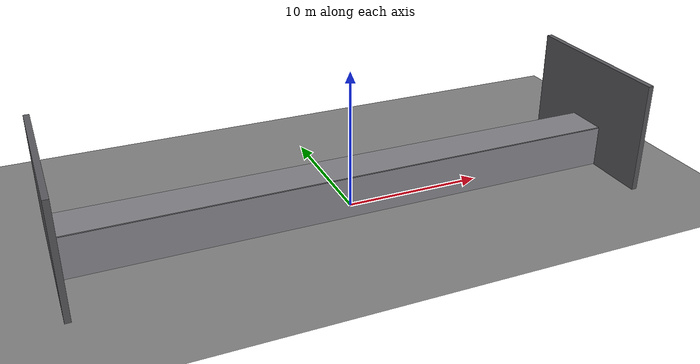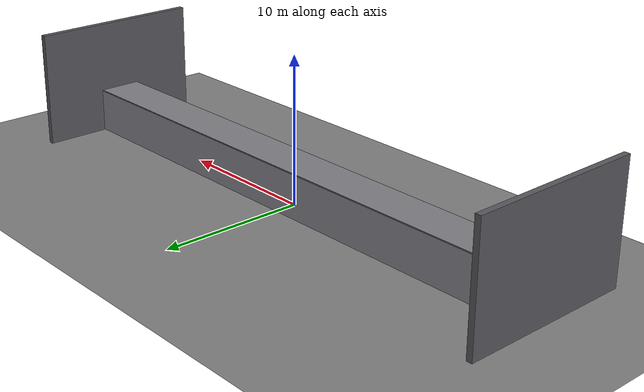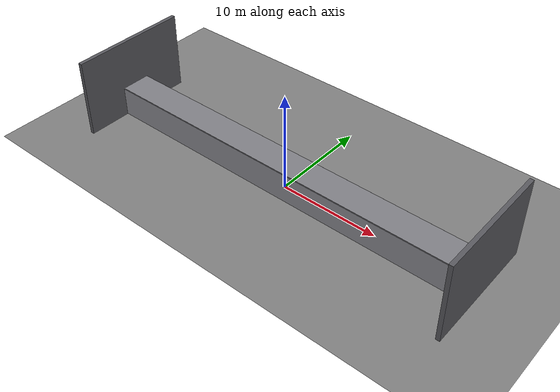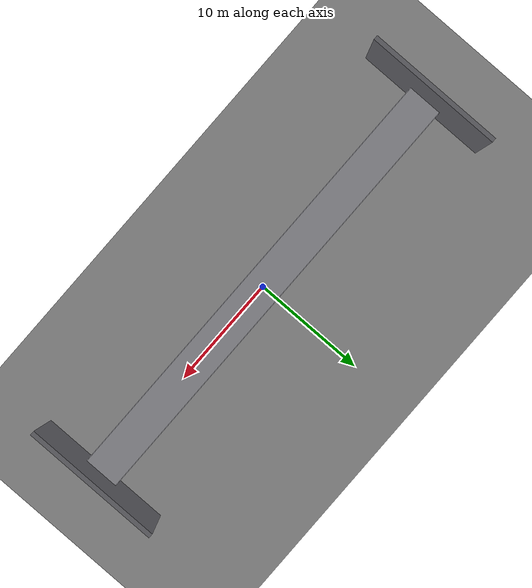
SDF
<?xml version="1.0"?>
<!--
  隧道病害巡检仿真世界
  - 简易矩形隧道走廊: 左墙 + 右墙 + 顶板, 净宽 ~2.5m, 净高 ~2.75m
  - 走廊内放置红/绿/蓝色块与圆柱, 为相机、16线雷达提供丰富特征(供后续 SLAM / 病害检测)
  - 注: 地面与阳光显式定义, 不依赖 model:// 资源路径
-->
<sdf version="1.9">
  <world name="tunnel_world">

    <physics name="default_physics" default="true" type="dart">
      <gravity>0 0 -9.8</gravity>
      <max_step_size>0.002</max_step_size>
      <real_time_factor>1</real_time_factor>
      <real_time_update_rate>500</real_time_update_rate>
    </physics>

    <scene>
      <ambient>0.6 0.6 0.6</ambient>
      <background>0.2 0.2 0.2</background>
      <shadows>true</shadows>
    </scene>

    <plugin filename="gz-sim-sensors-system" name="gz::sim::systems::Sensors">
      <render_engine>ogre2</render_engine>
    </plugin>

    <!-- 关键: world 有 Sensors 等系统插件时, gz-sim 不再自动加载默认系统集(含 Physics)。
         必须显式加 physics-system, 否则物理引擎不创建、实体静止、DiffDrive 永不发 odom。 -->
    <plugin filename="gz-sim-physics-system" name="gz::sim::systems::Physics"/>

    <!-- 太阳(方向光) -->
    <light type="directional" name="sun">
      <cast_shadows>true</cast_shadows>
      <pose>0 0 10 0 0 0</pose>
      <diffuse>0.35 0.35 0.35</diffuse>
      <specular>0.05 0.05 0.05</specular>
      <direction>-0.5 0.1 -0.9</direction>
    </light>

    <!-- 隧道内点光源: 沿隧道每 10m 一盏(z=2.4, range 16)。
         封闭隧道顶挡住太阳直射, 仅靠 scene ambient 会让墙面均匀灰、病害贴图看不清
         (v11-v13t 对比度 std 掉到 10~29 的根源)。点光源制造亮池+暗缝,
         病害 PBR 贴图才能看清。v9/v10 有这组灯, std≈40。 -->
    <light type="point" name="tunnel_light_1">
      <cast_shadows>false</cast_shadows>
      <pose>-15 0 2.4 0 0 0</pose>
      <diffuse>0.5 0.5 0.5</diffuse>
      <specular>0.05 0.05 0.05</specular>
      <attenuation>
        <range>16</range>
        <constant>1.0</constant>
        <linear>0.05</linear>
        <quadratic>0.005</quadratic>
      </attenuation>
      <intensity>1.0</intensity>
    </light>
    <light type="point" name="tunnel_light_2">
      <cast_shadows>false</cast_shadows>
      <pose>-5 0 2.4 0 0 0</pose>
      <diffuse>0.5 0.5 0.5</diffuse>
      <specular>0.05 0.05 0.05</specular>
      <attenuation>
        <range>16</range>
        <constant>1.0</constant>
        <linear>0.05</linear>
        <quadratic>0.005</quadratic>
      </attenuation>
      <intensity>1.0</intensity>
    </light>
    <light type="point" name="tunnel_light_3">
      <cast_shadows>false</cast_shadows>
      <pose>5 0 2.4 0 0 0</pose>
      <diffuse>0.5 0.5 0.5</diffuse>
      <specular>0.05 0.05 0.05</specular>
      <attenuation>
        <range>16</range>
        <constant>1.0</constant>
        <linear>0.05</linear>
        <quadratic>0.005</quadratic>
      </attenuation>
      <intensity>1.0</intensity>
    </light>
    <light type="point" name="tunnel_light_4">
      <cast_shadows>false</cast_shadows>
      <pose>15 0 2.4 0 0 0</pose>
      <diffuse>0.5 0.5 0.5</diffuse>
      <specular>0.05 0.05 0.05</specular>
      <attenuation>
        <range>16</range>
        <constant>1.0</constant>
        <linear>0.05</linear>
        <quadratic>0.005</quadratic>
      </attenuation>
      <intensity>1.0</intensity>
    </light>

    <!-- 地面 -->
    <model name="ground_plane">
      <static>true</static>
      <link name="ground">
        <collision name="ground_collision">
          <geometry>
            <plane><normal>0 0 1</normal><size>100 100</size></plane>
          </geometry>
        </collision>
        <visual name="ground_visual">
          <geometry>
            <plane><normal>0 0 1</normal><size>100 100</size></plane>
          </geometry>
          <material>
  <ambient>0.5 0.5 0.5</ambient>
  <diffuse>0.50 0.50 0.50 1</diffuse>
  <emissive>0.08 0.08 0.08 1</emissive><specular>0.05 0.05 0.05 1</specular>
  <pbr>
    <metal>
      <albedo_map>file:///home/ylf/workspace/inspection_robot/worlds/textures/tunnel_concrete_floor.png</albedo_map>
      <metalness>0.0</metalness>
      <roughness>0.9</roughness>
    </metal>
  </pbr></material>
        </visual>
      </link>
    </model>

    <!-- ============ 隧道左墙 ============ -->
    <model name="tunnel_left_wall">
      <static>true</static>
      <pose>0 1.4 1.5 0 0 0</pose>
      <link name="wall">
        <visual name="wall_visual">
          <geometry><box><size>40 0.3 3</size></box></geometry>
          <material>
  <ambient>0.55 0.55 0.58</ambient>
  <diffuse>0.55 0.55 0.58 1</diffuse>
  <emissive>0.09 0.09 0.09 1</emissive><specular>0.05 0.05 0.05 1</specular>
  <pbr>
    <metal>
      <albedo_map>file:///home/ylf/workspace/inspection_robot/worlds/textures/tunnel_concrete_wall.png</albedo_map>
      <metalness>0.0</metalness>
      <roughness>0.9</roughness>
    </metal>
  </pbr></material>
        </visual>
        <collision name="wall_collision">
          <geometry><box><size>40 0.3 3</size></box></geometry>
        </collision>
      </link>
    </model>

    <!-- ============ 隧道右墙 ============ -->
    <model name="tunnel_right_wall">
      <static>true</static>
      <pose>0 -1.4 1.5 0 0 0</pose>
      <link name="wall">
        <visual name="wall_visual">
          <geometry><box><size>40 0.3 3</size></box></geometry>
          <material>
  <ambient>0.55 0.55 0.58</ambient>
  <diffuse>0.55 0.55 0.58 1</diffuse>
  <emissive>0.09 0.09 0.09 1</emissive><specular>0.05 0.05 0.05 1</specular>
  <pbr>
    <metal>
      <albedo_map>file:///home/ylf/workspace/inspection_robot/worlds/textures/tunnel_concrete_wall.png</albedo_map>
      <metalness>0.0</metalness>
      <roughness>0.9</roughness>
    </metal>
  </pbr></material>
        </visual>
        <collision name="wall_collision">
          <geometry><box><size>40 0.3 3</size></box></geometry>
        </collision>
      </link>
    </model>

    <!-- ============ 隧道顶板 (拱顶近似) ============ -->
    <model name="tunnel_ceiling">
      <static>true</static>
      <pose>0 0 2.9 0 0 0</pose>
      <link name="ceiling">
        <visual name="ceiling_visual">
          <geometry><box><size>40 3 0.3</size></box></geometry>
          <material>
  <ambient>0.5 0.5 0.52</ambient>
  <diffuse>0.50 0.50 0.52 1</diffuse>
  <emissive>0.08 0.08 0.08 1</emissive><specular>0.05 0.05 0.05 1</specular>
  <pbr>
    <metal>
      <albedo_map>file:///home/ylf/workspace/inspection_robot/worlds/textures/tunnel_concrete_wall.png</albedo_map>
      <metalness>0.0</metalness>
      <roughness>0.9</roughness>
    </metal>
  </pbr></material>
        </visual>
        <collision name="ceiling_collision">
          <geometry><box><size>40 3 0.3</size></box></geometry>
        </collision>
      </link>
    </model>

    <!-- ============ 钢轨 (轨道病害载体, 标准轨距 1435mm, 轨顶 z≈0.15) ============ -->
    <model name="rail_left">
      <static>true</static>
      <pose>0 0.717 0.075 0 0 0</pose>
      <link name="rail">
        <visual name="visual">
          <geometry><box><size>40 0.09 0.15</size></box></geometry>
          <material>
            <diffuse>0.72 0.72 0.75 1</diffuse>
            <emissive>0.12 0.12 0.12 1</emissive>
            <ambient>0.72 0.72 0.75</ambient>
          </material>
        </visual>
        <collision name="collision">
          <geometry><box><size>40 0.09 0.15</size></box></geometry>
        </collision>
      </link>
    </model>
    <model name="rail_right">
      <static>true</static>
      <pose>0 -0.717 0.075 0 0 0</pose>
      <link name="rail">
        <visual name="visual">
          <geometry><box><size>40 0.09 0.15</size></box></geometry>
          <material>
            <diffuse>0.72 0.72 0.75 1</diffuse>
            <emissive>0.12 0.12 0.12 1</emissive>
            <ambient>0.72 0.72 0.75</ambient>
          </material>
        </visual>
        <collision name="collision">
          <geometry><box><size>40 0.09 0.15</size></box></geometry>
        </collision>
      </link>
    </model>

    <!-- ============ 隧道端墙 (封住 x=±20 开口, 避免相机看到隧道外天空致盲白屏) ============ -->
    <model name="tunnel_end_wall_far">
      <static>true</static>
      <pose>20 0 3.5 0 0 0</pose>
      <link name="wall">
        <visual name="visual">
          <geometry><box><size>0.4 12 9</size></box></geometry>
          <material>
            <diffuse>0.35 0.35 0.37 1</diffuse>
            <emissive>0.06 0.06 0.06 1</emissive>
            <ambient>0.35 0.35 0.37</ambient>
          </material>
        </visual>
        <collision name="collision">
          <geometry><box><size>0.4 12 9</size></box></geometry>
        </collision>
      </link>
    </model>
    <model name="tunnel_end_wall_near">
      <static>true</static>
      <pose>-20 0 3.5 0 0 0</pose>
      <link name="wall">
        <visual name="visual">
          <geometry><box><size>0.4 12 9</size></box></geometry>
          <material>
            <diffuse>0.35 0.35 0.37 1</diffuse>
            <emissive>0.06 0.06 0.06 1</emissive>
            <ambient>0.35 0.35 0.37</ambient>
          </material>
        </visual>
        <collision name="collision">
          <geometry><box><size>0.4 12 9</size></box></geometry>
        </collision>
      </link>
    </model>

    <!-- ============ 特征物 (SLAM / 病害检测用) ============ -->
    <model name="red_box">
      <static>true</static>
      <pose>3 0.8 0.25 0 0 0</pose>
      <link name="body">
        <visual name="visual">
          <geometry><box><size>0.8 0.8 0.5</size></box></geometry>
          <material>
  <diffuse>0.80 0.20 0.20 1</diffuse>
  <emissive>0.32 0.08 0.08 1</emissive><ambient>0.8 0.2 0.2</ambient></material>
        </visual>
        <collision name="collision">
          <geometry><box><size>0.8 0.8 0.5</size></box></geometry>
        </collision>
      </link>
    </model>

    <model name="green_box">
      <static>true</static>
      <pose>6 -0.8 0.15 0 0 0.4</pose>
      <link name="body">
        <visual name="visual">
          <geometry><box><size>0.6 0.6 0.3</size></box></geometry>
          <material>
  <diffuse>0.20 0.80 0.20 1</diffuse>
  <emissive>0.08 0.32 0.08 1</emissive><ambient>0.2 0.8 0.2</ambient></material>
        </visual>
        <collision name="collision">
          <geometry><box><size>0.6 0.6 0.3</size></box></geometry>
        </collision>
      </link>
    </model>

    <model name="blue_cylinder">
      <static>true</static>
      <pose>9 0.8 0.5 0 0 0</pose>
      <link name="body">
        <visual name="visual">
          <geometry><cylinder><radius>0.3</radius><length>1.0</length></cylinder></geometry>
          <material>
  <diffuse>0.20 0.20 0.80 1</diffuse>
  <emissive>0.08 0.08 0.32 1</emissive><ambient>0.2 0.2 0.8</ambient></material>
        </visual>
        <collision name="collision">
          <geometry><cylinder><radius>0.3</radius><length>1.0</length></cylinder></geometry>
        </collision>
      </link>
    </model>

    <model name="yellow_box">
      <static>true</static>
      <pose>12 -0.8 0.35 0 0 0.2</pose>
      <link name="body">
        <visual name="visual">
          <geometry><box><size>0.9 0.6 0.7</size></box></geometry>
          <material>
  <diffuse>0.90 0.90 0.20 1</diffuse>
  <emissive>0.36 0.36 0.08 1</emissive><ambient>0.9 0.9 0.2</ambient></material>
        </visual>
        <collision name="collision">
          <geometry><box><size>0.9 0.6 0.7</size></box></geometry>
        </collision>
      </link>
    </model>

  <!--__ROBOT__-->
  </world>
</sdf>
